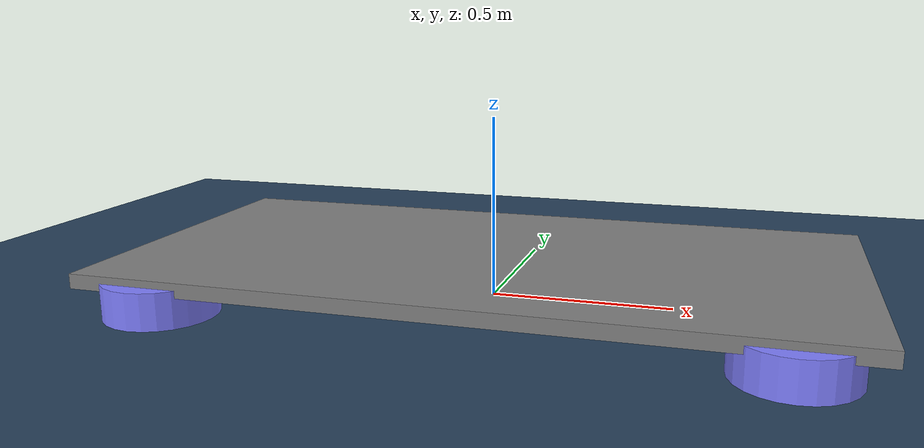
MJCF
<mujoco>
  <compiler autolimits="true"/>

  <asset>
    <texture name="grid" type="2d" builtin="checker" width="512" height="512"
             rgb1=".1 .2 .3" rgb2=".2 .3 .4"/>
    <material name="grid" texture="grid" texrepeat="1 1" texuniform="true" reflectance=".2"/>
  </asset>

  <default>
    <joint damping=".03" actuatorfrcrange="-1 1"/>
    <default class="wheel">
      <geom type="cylinder" size=".15 .05" rgba=".5 .5 1 1" friction="1 0.1 0.1"/>
    </default>
  </default>

  <worldbody>
    <!-- Ground -->
    <geom type="plane" size="5 5 .01" material="grid" friction="1 0.1 0.1"/>

    <!-- Car Body -->
    <body name="car" pos="0 0 .05">
      <freejoint/>
      <geom name="chasis" type="box" size="1 0.5 0.02"
            pos="0 0 0.05" condim="3" friction="1 0.1 0.1"/>

      <!-- Front Left Wheel -->
      <body name="left_wheel" pos="-0.8 0.4 0">
        <joint name="left" type="hinge" axis="1 0 0" pos="0 0 0"/>
        <geom class="wheel"/>
      </body>

      <!-- Front Right Wheel -->
      <body name="right_wheel" pos="-0.8 -0.4 0">
        <joint name="right" type="hinge" axis="1 0 0" pos="0 0 0"/>
        <geom class="wheel"/>
      </body>

      <!-- Rear Left Wheel -->
      <body name="rear_left_wheel" pos="0.8 0.4 0">
        <joint name="rear_left" type="hinge" axis="1 0 0" pos="0 0 0"/>
        <geom class="wheel"/>
      </body>

      <!-- Rear Right Wheel -->
      <body name="rear_right_wheel" pos="0.8 -0.4 0">
        <joint name="rear_right" type="hinge" axis="1 0 0" pos="0 0 0"/>
        <geom class="wheel"/>
      </body>
    </body>
  </worldbody>

  <!-- Actuators for driving and steering -->
  <actuator>
    <!-- Forward motion (apply to rear wheels) -->
    <motor name="forward_left" joint="rear_left" ctrlrange="-1 1"/>
    <motor name="forward_right" joint="rear_right" ctrlrange="-1 1"/>

    <!-- Steering (apply to front wheels) -->
    <motor name="steer_left" joint="left" ctrlrange="-0.5 0.5"/>
    <motor name="steer_right" joint="right" ctrlrange="-0.5 0.5"/>
  </actuator>
</mujoco>
